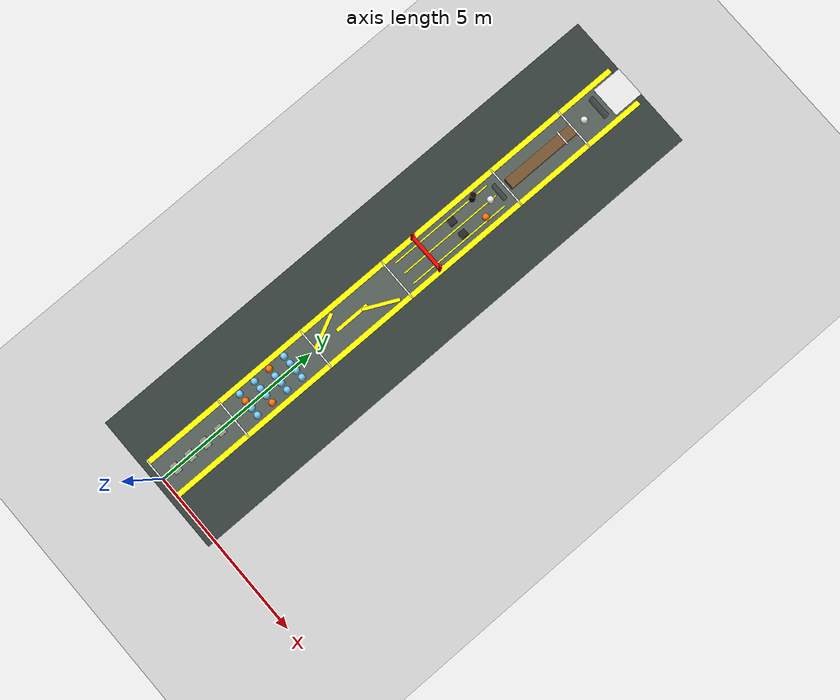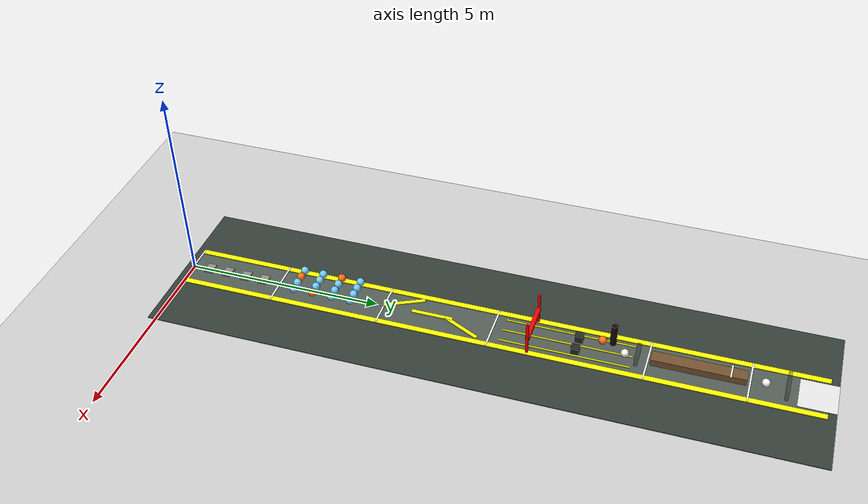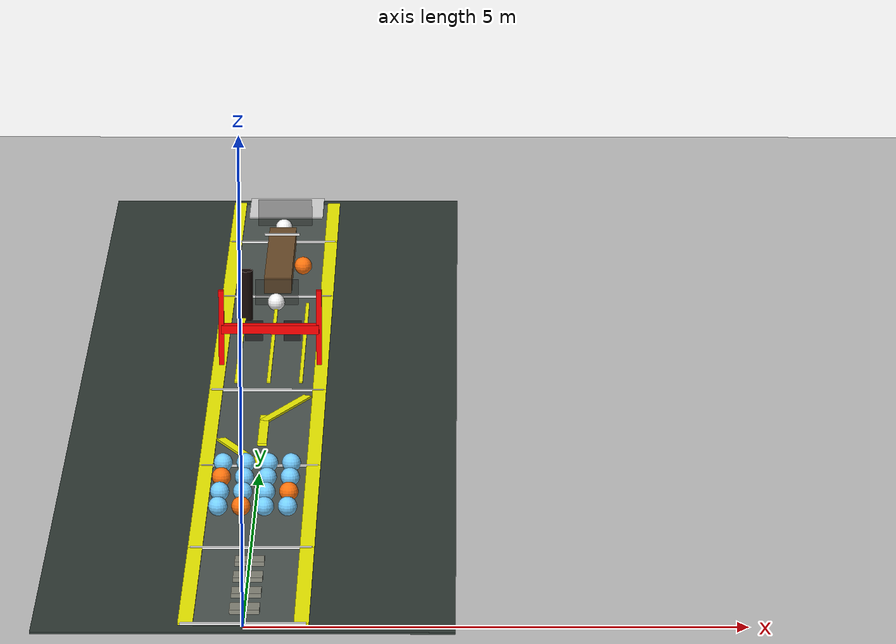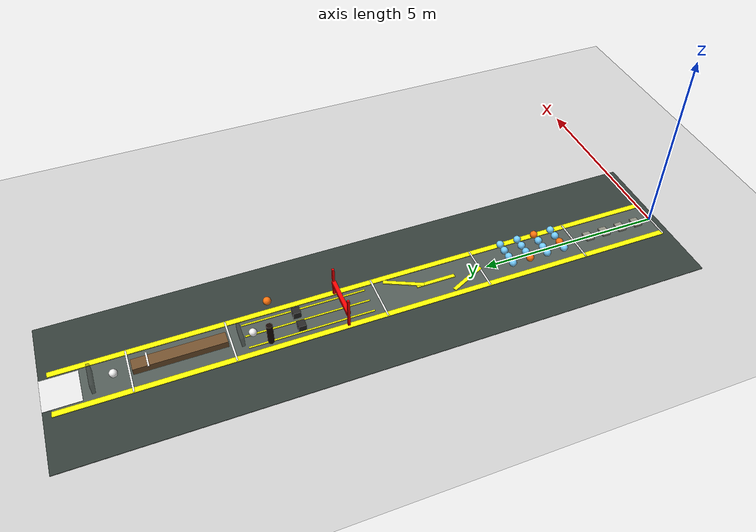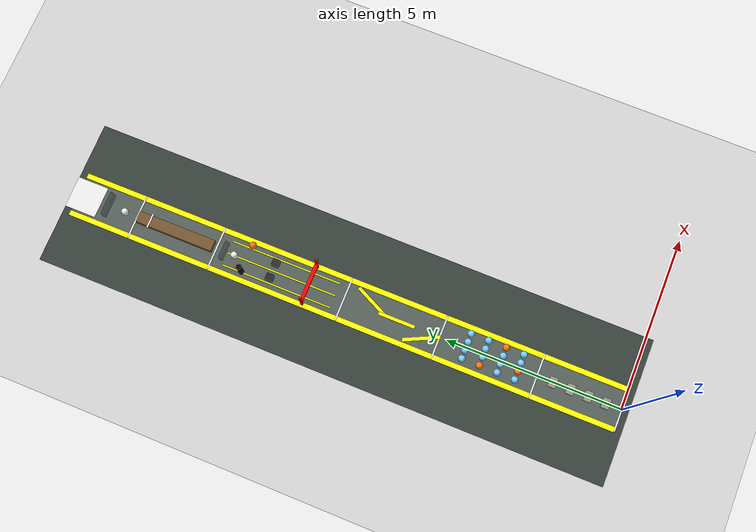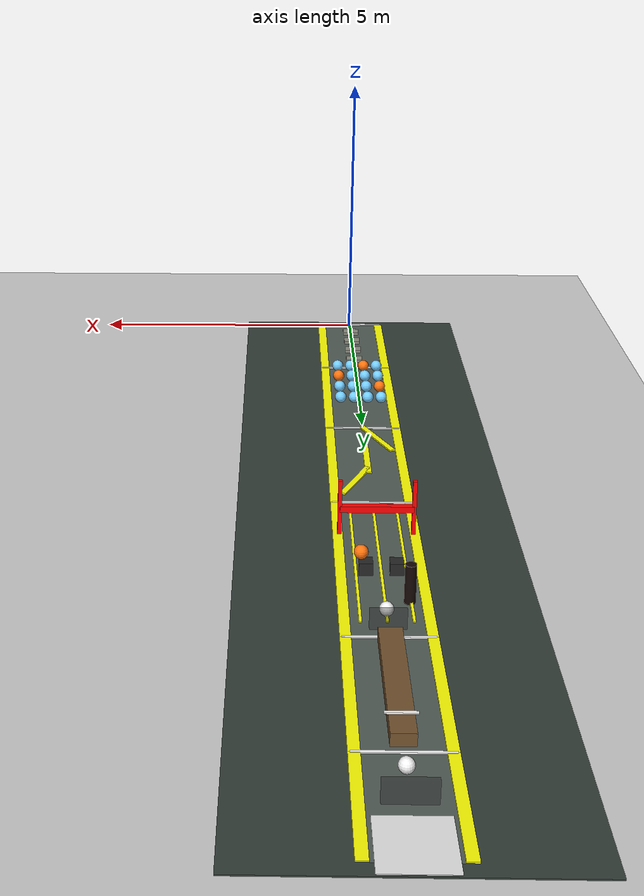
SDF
<?xml version='1.0'?>
<sdf version='1.6'>
  <world name='wild_treasure_2026'>
    <gravity>0 0 -9.8</gravity>
    <physics name='default_physics' type='ode'>
      <max_step_size>0.002</max_step_size>
      <real_time_update_rate>500</real_time_update_rate>
    </physics>
    <include><uri>model://sun</uri></include>
    <include><uri>model://ground_plane</uri></include>

    <model name='ground_2026'>
      <static>true</static>
      <pose>0 8 0 0 0 0</pose>
      <link name='ground_2026_link'>
      <collision name='ground_2026_collision'>
        <geometry><box><size>4.2 16.4 0.02</size></box></geometry>
      </collision>
        <visual name='ground_2026_visual'>
          <geometry><box><size>4.2 16.4 0.02</size></box></geometry>
          <material><ambient>0.20 0.24 0.22 1</ambient><diffuse>0.20 0.24 0.22 1</diffuse></material>
        </visual>
      </link>
    </model>
    <model name='seg1_lane'>
      <static>true</static>
      <pose>0 1.2 0.011 0 0 0</pose>
      <link name='seg1_lane_link'>
        <visual name='seg1_lane_visual'>
          <geometry><box><size>1.0 2.4 0.004</size></box></geometry>
          <material><ambient>0.32 0.36 0.34 1</ambient><diffuse>0.32 0.36 0.34 1</diffuse></material>
        </visual>
      </link>
    </model>
    <model name='seg1_left_yellow'>
      <static>true</static>
      <pose>-0.575 1.2 0.025 0 0 0</pose>
      <link name='seg1_left_yellow_link'>
        <visual name='seg1_left_yellow_visual'>
          <geometry><box><size>0.15 2.4 0.02</size></box></geometry>
          <material><ambient>1 1 0 1</ambient><diffuse>1 1 0 1</diffuse></material>
        </visual>
      </link>
    </model>
    <model name='seg1_right_yellow'>
      <static>true</static>
      <pose>0.575 1.2 0.025 0 0 0</pose>
      <link name='seg1_right_yellow_link'>
        <visual name='seg1_right_yellow_visual'>
          <geometry><box><size>0.15 2.4 0.02</size></box></geometry>
          <material><ambient>1 1 0 1</ambient><diffuse>1 1 0 1</diffuse></material>
        </visual>
      </link>
    </model>
    <model name='seg1_start_line'>
      <static>true</static>
      <pose>0 0.0 0.03 0 0 0</pose>
      <link name='seg1_start_line_link'>
        <visual name='seg1_start_line_visual'>
          <geometry><box><size>1.25 0.04 0.02</size></box></geometry>
          <material><ambient>1 1 1 1</ambient><diffuse>1 1 1 1</diffuse></material>
        </visual>
      </link>
    </model>
    <model name='seg2_lane'>
      <static>true</static>
      <pose>0 3.8 0.011 0 0 0</pose>
      <link name='seg2_lane_link'>
        <visual name='seg2_lane_visual'>
          <geometry><box><size>1.0 2.8000000000000003 0.004</size></box></geometry>
          <material><ambient>0.32 0.36 0.34 1</ambient><diffuse>0.32 0.36 0.34 1</diffuse></material>
        </visual>
      </link>
    </model>
    <model name='seg2_left_yellow'>
      <static>true</static>
      <pose>-0.575 3.8 0.025 0 0 0</pose>
      <link name='seg2_left_yellow_link'>
        <visual name='seg2_left_yellow_visual'>
          <geometry><box><size>0.15 2.8000000000000003 0.02</size></box></geometry>
          <material><ambient>1 1 0 1</ambient><diffuse>1 1 0 1</diffuse></material>
        </visual>
      </link>
    </model>
    <model name='seg2_right_yellow'>
      <static>true</static>
      <pose>0.575 3.8 0.025 0 0 0</pose>
      <link name='seg2_right_yellow_link'>
        <visual name='seg2_right_yellow_visual'>
          <geometry><box><size>0.15 2.8000000000000003 0.02</size></box></geometry>
          <material><ambient>1 1 0 1</ambient><diffuse>1 1 0 1</diffuse></material>
        </visual>
      </link>
    </model>
    <model name='seg2_start_line'>
      <static>true</static>
      <pose>0 2.4 0.03 0 0 0</pose>
      <link name='seg2_start_line_link'>
        <visual name='seg2_start_line_visual'>
          <geometry><box><size>1.25 0.04 0.02</size></box></geometry>
          <material><ambient>1 1 1 1</ambient><diffuse>1 1 1 1</diffuse></material>
        </visual>
      </link>
    </model>
    <model name='seg3_lane'>
      <static>true</static>
      <pose>0 6.6 0.011 0 0 0</pose>
      <link name='seg3_lane_link'>
        <visual name='seg3_lane_visual'>
          <geometry><box><size>1.0 2.8 0.004</size></box></geometry>
          <material><ambient>0.32 0.36 0.34 1</ambient><diffuse>0.32 0.36 0.34 1</diffuse></material>
        </visual>
      </link>
    </model>
    <model name='seg3_left_yellow'>
      <static>true</static>
      <pose>-0.575 6.6 0.025 0 0 0</pose>
      <link name='seg3_left_yellow_link'>
        <visual name='seg3_left_yellow_visual'>
          <geometry><box><size>0.15 2.8 0.02</size></box></geometry>
          <material><ambient>1 1 0 1</ambient><diffuse>1 1 0 1</diffuse></material>
        </visual>
      </link>
    </model>
    <model name='seg3_right_yellow'>
      <static>true</static>
      <pose>0.575 6.6 0.025 0 0 0</pose>
      <link name='seg3_right_yellow_link'>
        <visual name='seg3_right_yellow_visual'>
          <geometry><box><size>0.15 2.8 0.02</size></box></geometry>
          <material><ambient>1 1 0 1</ambient><diffuse>1 1 0 1</diffuse></material>
        </visual>
      </link>
    </model>
    <model name='seg3_start_line'>
      <static>true</static>
      <pose>0 5.2 0.03 0 0 0</pose>
      <link name='seg3_start_line_link'>
        <visual name='seg3_start_line_visual'>
          <geometry><box><size>1.25 0.04 0.02</size></box></geometry>
          <material><ambient>1 1 1 1</ambient><diffuse>1 1 1 1</diffuse></material>
        </visual>
      </link>
    </model>
    <model name='seg4_lane'>
      <static>true</static>
      <pose>0 9.9 0.011 0 0 0</pose>
      <link name='seg4_lane_link'>
        <visual name='seg4_lane_visual'>
          <geometry><box><size>1.0 3.8000000000000007 0.004</size></box></geometry>
          <material><ambient>0.32 0.36 0.34 1</ambient><diffuse>0.32 0.36 0.34 1</diffuse></material>
        </visual>
      </link>
    </model>
    <model name='seg4_left_yellow'>
      <static>true</static>
      <pose>-0.575 9.9 0.025 0 0 0</pose>
      <link name='seg4_left_yellow_link'>
        <visual name='seg4_left_yellow_visual'>
          <geometry><box><size>0.15 3.8000000000000007 0.02</size></box></geometry>
          <material><ambient>1 1 0 1</ambient><diffuse>1 1 0 1</diffuse></material>
        </visual>
      </link>
    </model>
    <model name='seg4_right_yellow'>
      <static>true</static>
      <pose>0.575 9.9 0.025 0 0 0</pose>
      <link name='seg4_right_yellow_link'>
        <visual name='seg4_right_yellow_visual'>
          <geometry><box><size>0.15 3.8000000000000007 0.02</size></box></geometry>
          <material><ambient>1 1 0 1</ambient><diffuse>1 1 0 1</diffuse></material>
        </visual>
      </link>
    </model>
    <model name='seg4_start_line'>
      <static>true</static>
      <pose>0 8.0 0.03 0 0 0</pose>
      <link name='seg4_start_line_link'>
        <visual name='seg4_start_line_visual'>
          <geometry><box><size>1.25 0.04 0.02</size></box></geometry>
          <material><ambient>1 1 1 1</ambient><diffuse>1 1 1 1</diffuse></material>
        </visual>
      </link>
    </model>
    <model name='seg5_lane'>
      <static>true</static>
      <pose>0 13.0 0.011 0 0 0</pose>
      <link name='seg5_lane_link'>
        <visual name='seg5_lane_visual'>
          <geometry><box><size>1.0 2.3999999999999986 0.004</size></box></geometry>
          <material><ambient>0.32 0.36 0.34 1</ambient><diffuse>0.32 0.36 0.34 1</diffuse></material>
        </visual>
      </link>
    </model>
    <model name='seg5_left_yellow'>
      <static>true</static>
      <pose>-0.575 13.0 0.025 0 0 0</pose>
      <link name='seg5_left_yellow_link'>
        <visual name='seg5_left_yellow_visual'>
          <geometry><box><size>0.15 2.3999999999999986 0.02</size></box></geometry>
          <material><ambient>1 1 0 1</ambient><diffuse>1 1 0 1</diffuse></material>
        </visual>
      </link>
    </model>
    <model name='seg5_right_yellow'>
      <static>true</static>
      <pose>0.575 13.0 0.025 0 0 0</pose>
      <link name='seg5_right_yellow_link'>
        <visual name='seg5_right_yellow_visual'>
          <geometry><box><size>0.15 2.3999999999999986 0.02</size></box></geometry>
          <material><ambient>1 1 0 1</ambient><diffuse>1 1 0 1</diffuse></material>
        </visual>
      </link>
    </model>
    <model name='seg5_start_line'>
      <static>true</static>
      <pose>0 11.8 0.03 0 0 0</pose>
      <link name='seg5_start_line_link'>
        <visual name='seg5_start_line_visual'>
          <geometry><box><size>1.25 0.04 0.02</size></box></geometry>
          <material><ambient>1 1 1 1</ambient><diffuse>1 1 1 1</diffuse></material>
        </visual>
      </link>
    </model>
    <model name='seg6_lane'>
      <static>true</static>
      <pose>0 15.1 0.011 0 0 0</pose>
      <link name='seg6_lane_link'>
        <visual name='seg6_lane_visual'>
          <geometry><box><size>1.0 1.8000000000000007 0.004</size></box></geometry>
          <material><ambient>0.32 0.36 0.34 1</ambient><diffuse>0.32 0.36 0.34 1</diffuse></material>
        </visual>
      </link>
    </model>
    <model name='seg6_left_yellow'>
      <static>true</static>
      <pose>-0.575 15.1 0.025 0 0 0</pose>
      <link name='seg6_left_yellow_link'>
        <visual name='seg6_left_yellow_visual'>
          <geometry><box><size>0.15 1.8000000000000007 0.02</size></box></geometry>
          <material><ambient>1 1 0 1</ambient><diffuse>1 1 0 1</diffuse></material>
        </visual>
      </link>
    </model>
    <model name='seg6_right_yellow'>
      <static>true</static>
      <pose>0.575 15.1 0.025 0 0 0</pose>
      <link name='seg6_right_yellow_link'>
        <visual name='seg6_right_yellow_visual'>
          <geometry><box><size>0.15 1.8000000000000007 0.02</size></box></geometry>
          <material><ambient>1 1 0 1</ambient><diffuse>1 1 0 1</diffuse></material>
        </visual>
      </link>
    </model>
    <model name='seg6_start_line'>
      <static>true</static>
      <pose>0 14.2 0.03 0 0 0</pose>
      <link name='seg6_start_line_link'>
        <visual name='seg6_start_line_visual'>
          <geometry><box><size>1.25 0.04 0.02</size></box></geometry>
          <material><ambient>1 1 1 1</ambient><diffuse>1 1 1 1</diffuse></material>
        </visual>
      </link>
    </model>
    <model name='finish_circle_marker'>
      <static>true</static>
      <pose>0 15.75 0.035 0 0 0</pose>
      <link name='finish_circle_marker_link'>
        <visual name='finish_circle_marker_visual'>
          <geometry><box><size>0.9 0.9 0.012</size></box></geometry>
          <material><ambient>0.9 0.9 0.9 1</ambient><diffuse>0.9 0.9 0.9 1</diffuse></material>
        </visual>
      </link>
    </model>
    <model name='flagstone_00'>
      <static>true</static>
      <pose>0 0.45 0.035 0 0 0</pose>
      <link name='flagstone_00_link'>
      <collision name='flagstone_00_collision'>
        <geometry><box><size>0.30 0.22 0.05</size></box></geometry>
      </collision>
        <visual name='flagstone_00_visual'>
          <geometry><box><size>0.30 0.22 0.05</size></box></geometry>
          <material><ambient>0.55 0.55 0.50 1</ambient><diffuse>0.55 0.55 0.50 1</diffuse></material>
        </visual>
      </link>
    </model>
    <model name='flagstone_01'>
      <static>true</static>
      <pose>0 0.95 0.035 0 0 0</pose>
      <link name='flagstone_01_link'>
      <collision name='flagstone_01_collision'>
        <geometry><box><size>0.30 0.22 0.05</size></box></geometry>
      </collision>
        <visual name='flagstone_01_visual'>
          <geometry><box><size>0.30 0.22 0.05</size></box></geometry>
          <material><ambient>0.55 0.55 0.50 1</ambient><diffuse>0.55 0.55 0.50 1</diffuse></material>
        </visual>
      </link>
    </model>
    <model name='flagstone_02'>
      <static>true</static>
      <pose>0 1.45 0.035 0 0 0</pose>
      <link name='flagstone_02_link'>
      <collision name='flagstone_02_collision'>
        <geometry><box><size>0.30 0.22 0.05</size></box></geometry>
      </collision>
        <visual name='flagstone_02_visual'>
          <geometry><box><size>0.30 0.22 0.05</size></box></geometry>
          <material><ambient>0.55 0.55 0.50 1</ambient><diffuse>0.55 0.55 0.50 1</diffuse></material>
        </visual>
      </link>
    </model>
    <model name='flagstone_03'>
      <static>true</static>
      <pose>0 1.95 0.035 0 0 0</pose>
      <link name='flagstone_03_link'>
      <collision name='flagstone_03_collision'>
        <geometry><box><size>0.30 0.22 0.05</size></box></geometry>
      </collision>
        <visual name='flagstone_03_visual'>
          <geometry><box><size>0.30 0.22 0.05</size></box></geometry>
          <material><ambient>0.55 0.55 0.50 1</ambient><diffuse>0.55 0.55 0.50 1</diffuse></material>
        </visual>
      </link>
    </model>
    <model name='seg2_blue_ball_r1c1'>
      <static>false</static>
      <pose>-0.36 2.95 0.30 0 0 0</pose>
      <link name='seg2_blue_ball_r1c1_link'>
        <inertial>
          <mass>0.06</mass>
          <inertia><ixx>0.00024000000000000003</ixx><iyy>0.00024000000000000003</iyy><izz>0.00024000000000000003</izz><ixy>0</ixy><ixz>0</ixz><iyz>0</iyz></inertia>
        </inertial>
        <collision name='seg2_blue_ball_r1c1_collision'>
          <geometry><sphere><radius>0.1</radius></sphere></geometry>
          <surface><friction><ode><mu>0.4</mu><mu2>0.4</mu2></ode></friction></surface>
        </collision>
        <visual name='seg2_blue_ball_r1c1_visual'>
          <geometry><sphere><radius>0.1</radius></sphere></geometry>
          <material><ambient>0.45 0.80 1.0 1</ambient><diffuse>0.45 0.80 1.0 1</diffuse></material>
        </visual>
      </link>
    </model>
    <model name='seg2_orange_ball_r1c2'>
      <static>false</static>
      <pose>-0.12 2.95 0.30 0 0 0</pose>
      <link name='seg2_orange_ball_r1c2_link'>
        <inertial>
          <mass>0.06</mass>
          <inertia><ixx>0.00024000000000000003</ixx><iyy>0.00024000000000000003</iyy><izz>0.00024000000000000003</izz><ixy>0</ixy><ixz>0</ixz><iyz>0</iyz></inertia>
        </inertial>
        <collision name='seg2_orange_ball_r1c2_collision'>
          <geometry><sphere><radius>0.1</radius></sphere></geometry>
          <surface><friction><ode><mu>0.4</mu><mu2>0.4</mu2></ode></friction></surface>
        </collision>
        <visual name='seg2_orange_ball_r1c2_visual'>
          <geometry><sphere><radius>0.1</radius></sphere></geometry>
          <material><ambient>1 0.45 0.05 1</ambient><diffuse>1 0.45 0.05 1</diffuse></material>
        </visual>
      </link>
    </model>
    <model name='seg2_blue_ball_r1c3'>
      <static>false</static>
      <pose>0.12 2.95 0.30 0 0 0</pose>
      <link name='seg2_blue_ball_r1c3_link'>
        <inertial>
          <mass>0.06</mass>
          <inertia><ixx>0.00024000000000000003</ixx><iyy>0.00024000000000000003</iyy><izz>0.00024000000000000003</izz><ixy>0</ixy><ixz>0</ixz><iyz>0</iyz></inertia>
        </inertial>
        <collision name='seg2_blue_ball_r1c3_collision'>
          <geometry><sphere><radius>0.1</radius></sphere></geometry>
          <surface><friction><ode><mu>0.4</mu><mu2>0.4</mu2></ode></friction></surface>
        </collision>
        <visual name='seg2_blue_ball_r1c3_visual'>
          <geometry><sphere><radius>0.1</radius></sphere></geometry>
          <material><ambient>0.45 0.80 1.0 1</ambient><diffuse>0.45 0.80 1.0 1</diffuse></material>
        </visual>
      </link>
    </model>
    <model name='seg2_blue_ball_r1c4'>
      <static>false</static>
      <pose>0.36 2.95 0.30 0 0 0</pose>
      <link name='seg2_blue_ball_r1c4_link'>
        <inertial>
          <mass>0.06</mass>
          <inertia><ixx>0.00024000000000000003</ixx><iyy>0.00024000000000000003</iyy><izz>0.00024000000000000003</izz><ixy>0</ixy><ixz>0</ixz><iyz>0</iyz></inertia>
        </inertial>
        <collision name='seg2_blue_ball_r1c4_collision'>
          <geometry><sphere><radius>0.1</radius></sphere></geometry>
          <surface><friction><ode><mu>0.4</mu><mu2>0.4</mu2></ode></friction></surface>
        </collision>
        <visual name='seg2_blue_ball_r1c4_visual'>
          <geometry><sphere><radius>0.1</radius></sphere></geometry>
          <material><ambient>0.45 0.80 1.0 1</ambient><diffuse>0.45 0.80 1.0 1</diffuse></material>
        </visual>
      </link>
    </model>
    <model name='seg2_blue_ball_r2c1'>
      <static>false</static>
      <pose>-0.36 3.45 0.30 0 0 0</pose>
      <link name='seg2_blue_ball_r2c1_link'>
        <inertial>
          <mass>0.06</mass>
          <inertia><ixx>0.00024000000000000003</ixx><iyy>0.00024000000000000003</iyy><izz>0.00024000000000000003</izz><ixy>0</ixy><ixz>0</ixz><iyz>0</iyz></inertia>
        </inertial>
        <collision name='seg2_blue_ball_r2c1_collision'>
          <geometry><sphere><radius>0.1</radius></sphere></geometry>
          <surface><friction><ode><mu>0.4</mu><mu2>0.4</mu2></ode></friction></surface>
        </collision>
        <visual name='seg2_blue_ball_r2c1_visual'>
          <geometry><sphere><radius>0.1</radius></sphere></geometry>
          <material><ambient>0.45 0.80 1.0 1</ambient><diffuse>0.45 0.80 1.0 1</diffuse></material>
        </visual>
      </link>
    </model>
    <model name='seg2_blue_ball_r2c2'>
      <static>false</static>
      <pose>-0.12 3.45 0.30 0 0 0</pose>
      <link name='seg2_blue_ball_r2c2_link'>
        <inertial>
          <mass>0.06</mass>
          <inertia><ixx>0.00024000000000000003</ixx><iyy>0.00024000000000000003</iyy><izz>0.00024000000000000003</izz><ixy>0</ixy><ixz>0</ixz><iyz>0</iyz></inertia>
        </inertial>
        <collision name='seg2_blue_ball_r2c2_collision'>
          <geometry><sphere><radius>0.1</radius></sphere></geometry>
          <surface><friction><ode><mu>0.4</mu><mu2>0.4</mu2></ode></friction></surface>
        </collision>
        <visual name='seg2_blue_ball_r2c2_visual'>
          <geometry><sphere><radius>0.1</radius></sphere></geometry>
          <material><ambient>0.45 0.80 1.0 1</ambient><diffuse>0.45 0.80 1.0 1</diffuse></material>
        </visual>
      </link>
    </model>
    <model name='seg2_blue_ball_r2c3'>
      <static>false</static>
      <pose>0.12 3.45 0.30 0 0 0</pose>
      <link name='seg2_blue_ball_r2c3_link'>
        <inertial>
          <mass>0.06</mass>
          <inertia><ixx>0.00024000000000000003</ixx><iyy>0.00024000000000000003</iyy><izz>0.00024000000000000003</izz><ixy>0</ixy><ixz>0</ixz><iyz>0</iyz></inertia>
        </inertial>
        <collision name='seg2_blue_ball_r2c3_collision'>
          <geometry><sphere><radius>0.1</radius></sphere></geometry>
          <surface><friction><ode><mu>0.4</mu><mu2>0.4</mu2></ode></friction></surface>
        </collision>
        <visual name='seg2_blue_ball_r2c3_visual'>
          <geometry><sphere><radius>0.1</radius></sphere></geometry>
          <material><ambient>0.45 0.80 1.0 1</ambient><diffuse>0.45 0.80 1.0 1</diffuse></material>
        </visual>
      </link>
    </model>
    <model name='seg2_orange_ball_r2c4'>
      <static>false</static>
      <pose>0.36 3.45 0.30 0 0 0</pose>
      <link name='seg2_orange_ball_r2c4_link'>
        <inertial>
          <mass>0.06</mass>
          <inertia><ixx>0.00024000000000000003</ixx><iyy>0.00024000000000000003</iyy><izz>0.00024000000000000003</izz><ixy>0</ixy><ixz>0</ixz><iyz>0</iyz></inertia>
        </inertial>
        <collision name='seg2_orange_ball_r2c4_collision'>
          <geometry><sphere><radius>0.1</radius></sphere></geometry>
          <surface><friction><ode><mu>0.4</mu><mu2>0.4</mu2></ode></friction></surface>
        </collision>
        <visual name='seg2_orange_ball_r2c4_visual'>
          <geometry><sphere><radius>0.1</radius></sphere></geometry>
          <material><ambient>1 0.45 0.05 1</ambient><diffuse>1 0.45 0.05 1</diffuse></material>
        </visual>
      </link>
    </model>
    <model name='seg2_orange_ball_r3c1'>
      <static>false</static>
      <pose>-0.36 3.95 0.30 0 0 0</pose>
      <link name='seg2_orange_ball_r3c1_link'>
        <inertial>
          <mass>0.06</mass>
          <inertia><ixx>0.00024000000000000003</ixx><iyy>0.00024000000000000003</iyy><izz>0.00024000000000000003</izz><ixy>0</ixy><ixz>0</ixz><iyz>0</iyz></inertia>
        </inertial>
        <collision name='seg2_orange_ball_r3c1_collision'>
          <geometry><sphere><radius>0.1</radius></sphere></geometry>
          <surface><friction><ode><mu>0.4</mu><mu2>0.4</mu2></ode></friction></surface>
        </collision>
        <visual name='seg2_orange_ball_r3c1_visual'>
          <geometry><sphere><radius>0.1</radius></sphere></geometry>
          <material><ambient>1 0.45 0.05 1</ambient><diffuse>1 0.45 0.05 1</diffuse></material>
        </visual>
      </link>
    </model>
    <model name='seg2_blue_ball_r3c2'>
      <static>false</static>
      <pose>-0.12 3.95 0.30 0 0 0</pose>
      <link name='seg2_blue_ball_r3c2_link'>
        <inertial>
          <mass>0.06</mass>
          <inertia><ixx>0.00024000000000000003</ixx><iyy>0.00024000000000000003</iyy><izz>0.00024000000000000003</izz><ixy>0</ixy><ixz>0</ixz><iyz>0</iyz></inertia>
        </inertial>
        <collision name='seg2_blue_ball_r3c2_collision'>
          <geometry><sphere><radius>0.1</radius></sphere></geometry>
          <surface><friction><ode><mu>0.4</mu><mu2>0.4</mu2></ode></friction></surface>
        </collision>
        <visual name='seg2_blue_ball_r3c2_visual'>
          <geometry><sphere><radius>0.1</radius></sphere></geometry>
          <material><ambient>0.45 0.80 1.0 1</ambient><diffuse>0.45 0.80 1.0 1</diffuse></material>
        </visual>
      </link>
    </model>
    <model name='seg2_blue_ball_r3c3'>
      <static>false</static>
      <pose>0.12 3.95 0.30 0 0 0</pose>
      <link name='seg2_blue_ball_r3c3_link'>
        <inertial>
          <mass>0.06</mass>
          <inertia><ixx>0.00024000000000000003</ixx><iyy>0.00024000000000000003</iyy><izz>0.00024000000000000003</izz><ixy>0</ixy><ixz>0</ixz><iyz>0</iyz></inertia>
        </inertial>
        <collision name='seg2_blue_ball_r3c3_collision'>
          <geometry><sphere><radius>0.1</radius></sphere></geometry>
          <surface><friction><ode><mu>0.4</mu><mu2>0.4</mu2></ode></friction></surface>
        </collision>
        <visual name='seg2_blue_ball_r3c3_visual'>
          <geometry><sphere><radius>0.1</radius></sphere></geometry>
          <material><ambient>0.45 0.80 1.0 1</ambient><diffuse>0.45 0.80 1.0 1</diffuse></material>
        </visual>
      </link>
    </model>
    <model name='seg2_blue_ball_r3c4'>
      <static>false</static>
      <pose>0.36 3.95 0.30 0 0 0</pose>
      <link name='seg2_blue_ball_r3c4_link'>
        <inertial>
          <mass>0.06</mass>
          <inertia><ixx>0.00024000000000000003</ixx><iyy>0.00024000000000000003</iyy><izz>0.00024000000000000003</izz><ixy>0</ixy><ixz>0</ixz><iyz>0</iyz></inertia>
        </inertial>
        <collision name='seg2_blue_ball_r3c4_collision'>
          <geometry><sphere><radius>0.1</radius></sphere></geometry>
          <surface><friction><ode><mu>0.4</mu><mu2>0.4</mu2></ode></friction></surface>
        </collision>
        <visual name='seg2_blue_ball_r3c4_visual'>
          <geometry><sphere><radius>0.1</radius></sphere></geometry>
          <material><ambient>0.45 0.80 1.0 1</ambient><diffuse>0.45 0.80 1.0 1</diffuse></material>
        </visual>
      </link>
    </model>
    <model name='seg2_blue_ball_r4c1'>
      <static>false</static>
      <pose>-0.36 4.45 0.30 0 0 0</pose>
      <link name='seg2_blue_ball_r4c1_link'>
        <inertial>
          <mass>0.06</mass>
          <inertia><ixx>0.00024000000000000003</ixx><iyy>0.00024000000000000003</iyy><izz>0.00024000000000000003</izz><ixy>0</ixy><ixz>0</ixz><iyz>0</iyz></inertia>
        </inertial>
        <collision name='seg2_blue_ball_r4c1_collision'>
          <geometry><sphere><radius>0.1</radius></sphere></geometry>
          <surface><friction><ode><mu>0.4</mu><mu2>0.4</mu2></ode></friction></surface>
        </collision>
        <visual name='seg2_blue_ball_r4c1_visual'>
          <geometry><sphere><radius>0.1</radius></sphere></geometry>
          <material><ambient>0.45 0.80 1.0 1</ambient><diffuse>0.45 0.80 1.0 1</diffuse></material>
        </visual>
      </link>
    </model>
    <model name='seg2_blue_ball_r4c2'>
      <static>false</static>
      <pose>-0.12 4.45 0.30 0 0 0</pose>
      <link name='seg2_blue_ball_r4c2_link'>
        <inertial>
          <mass>0.06</mass>
          <inertia><ixx>0.00024000000000000003</ixx><iyy>0.00024000000000000003</iyy><izz>0.00024000000000000003</izz><ixy>0</ixy><ixz>0</ixz><iyz>0</iyz></inertia>
        </inertial>
        <collision name='seg2_blue_ball_r4c2_collision'>
          <geometry><sphere><radius>0.1</radius></sphere></geometry>
          <surface><friction><ode><mu>0.4</mu><mu2>0.4</mu2></ode></friction></surface>
        </collision>
        <visual name='seg2_blue_ball_r4c2_visual'>
          <geometry><sphere><radius>0.1</radius></sphere></geometry>
          <material><ambient>0.45 0.80 1.0 1</ambient><diffuse>0.45 0.80 1.0 1</diffuse></material>
        </visual>
      </link>
    </model>
    <model name='seg2_blue_ball_r4c3'>
      <static>false</static>
      <pose>0.12 4.45 0.30 0 0 0</pose>
      <link name='seg2_blue_ball_r4c3_link'>
        <inertial>
          <mass>0.06</mass>
          <inertia><ixx>0.00024000000000000003</ixx><iyy>0.00024000000000000003</iyy><izz>0.00024000000000000003</izz><ixy>0</ixy><ixz>0</ixz><iyz>0</iyz></inertia>
        </inertial>
        <collision name='seg2_blue_ball_r4c3_collision'>
          <geometry><sphere><radius>0.1</radius></sphere></geometry>
          <surface><friction><ode><mu>0.4</mu><mu2>0.4</mu2></ode></friction></surface>
        </collision>
        <visual name='seg2_blue_ball_r4c3_visual'>
          <geometry><sphere><radius>0.1</radius></sphere></geometry>
          <material><ambient>0.45 0.80 1.0 1</ambient><diffuse>0.45 0.80 1.0 1</diffuse></material>
        </visual>
      </link>
    </model>
    <model name='seg2_blue_ball_r4c4'>
      <static>false</static>
      <pose>0.36 4.45 0.30 0 0 0</pose>
      <link name='seg2_blue_ball_r4c4_link'>
        <inertial>
          <mass>0.06</mass>
          <inertia><ixx>0.00024000000000000003</ixx><iyy>0.00024000000000000003</iyy><izz>0.00024000000000000003</izz><ixy>0</ixy><ixz>0</ixz><iyz>0</iyz></inertia>
        </inertial>
        <collision name='seg2_blue_ball_r4c4_collision'>
          <geometry><sphere><radius>0.1</radius></sphere></geometry>
          <surface><friction><ode><mu>0.4</mu><mu2>0.4</mu2></ode></friction></surface>
        </collision>
        <visual name='seg2_blue_ball_r4c4_visual'>
          <geometry><sphere><radius>0.1</radius></sphere></geometry>
          <material><ambient>0.45 0.80 1.0 1</ambient><diffuse>0.45 0.80 1.0 1</diffuse></material>
        </visual>
      </link>
    </model>
    <model name='curve_inner_yellow_0'>
      <static>true</static>
      <pose>-0.22 5.65 0.04 0 0 0.45</pose>
      <link name='curve_inner_yellow_0_link'>
        <visual name='curve_inner_yellow_0_visual'>
          <geometry><box><size>0.10 1.05 0.025</size></box></geometry>
          <material><ambient>1 1 0 1</ambient><diffuse>1 1 0 1</diffuse></material>
        </visual>
      </link>
    </model>
    <model name='curve_inner_yellow_1'>
      <static>true</static>
      <pose>0.0 6.45 0.04 0 0 0.0</pose>
      <link name='curve_inner_yellow_1_link'>
        <visual name='curve_inner_yellow_1_visual'>
          <geometry><box><size>0.10 1.05 0.025</size></box></geometry>
          <material><ambient>1 1 0 1</ambient><diffuse>1 1 0 1</diffuse></material>
        </visual>
      </link>
    </model>
    <model name='curve_inner_yellow_2'>
      <static>true</static>
      <pose>0.22 7.25 0.04 0 0 -0.45</pose>
      <link name='curve_inner_yellow_2_link'>
        <visual name='curve_inner_yellow_2_visual'>
          <geometry><box><size>0.10 1.05 0.025</size></box></geometry>
          <material><ambient>1 1 0 1</ambient><diffuse>1 1 0 1</diffuse></material>
        </visual>
      </link>
    </model>
    <model name='tunnel_lane_14'>
      <static>true</static>
      <pose>-0.36 9.85 0.04 0 0 0</pose>
      <link name='tunnel_lane_14_link'>
        <visual name='tunnel_lane_14_visual'>
          <geometry><box><size>0.04 3.2 0.02</size></box></geometry>
          <material><ambient>1 1 0 1</ambient><diffuse>1 1 0 1</diffuse></material>
        </visual>
      </link>
    </model>
    <model name='tunnel_lane_50'>
      <static>true</static>
      <pose>0.0 9.85 0.04 0 0 0</pose>
      <link name='tunnel_lane_50_link'>
        <visual name='tunnel_lane_50_visual'>
          <geometry><box><size>0.04 3.2 0.02</size></box></geometry>
          <material><ambient>1 1 0 1</ambient><diffuse>1 1 0 1</diffuse></material>
        </visual>
      </link>
    </model>
    <model name='tunnel_lane_86'>
      <static>true</static>
      <pose>0.36 9.85 0.04 0 0 0</pose>
      <link name='tunnel_lane_86_link'>
        <visual name='tunnel_lane_86_visual'>
          <geometry><box><size>0.04 3.2 0.02</size></box></geometry>
          <material><ambient>1 1 0 1</ambient><diffuse>1 1 0 1</diffuse></material>
        </visual>
      </link>
    </model>
    <model name='height_bar_left_post'>
      <static>true</static>
      <pose>-0.55 9.00 0.45 0 0 0</pose>
      <link name='height_bar_left_post_link'>
      <collision name='height_bar_left_post_collision'>
        <geometry><box><size>0.06 0.06 0.90</size></box></geometry>
      </collision>
        <visual name='height_bar_left_post_visual'>
          <geometry><box><size>0.06 0.06 0.90</size></box></geometry>
          <material><ambient>1 0 0 1</ambient><diffuse>1 0 0 1</diffuse></material>
        </visual>
      </link>
    </model>
    <model name='height_bar_right_post'>
      <static>true</static>
      <pose>0.55 9.00 0.45 0 0 0</pose>
      <link name='height_bar_right_post_link'>
      <collision name='height_bar_right_post_collision'>
        <geometry><box><size>0.06 0.06 0.90</size></box></geometry>
      </collision>
        <visual name='height_bar_right_post_visual'>
          <geometry><box><size>0.06 0.06 0.90</size></box></geometry>
          <material><ambient>1 0 0 1</ambient><diffuse>1 0 0 1</diffuse></material>
        </visual>
      </link>
    </model>
    <model name='height_limit_bar'>
      <static>true</static>
      <pose>0 9.00 0.45 0 0 0</pose>
      <link name='height_limit_bar_link'>
      <collision name='height_limit_bar_collision'>
        <geometry><box><size>1.10 0.10 0.10</size></box></geometry>
      </collision>
        <visual name='height_limit_bar_visual'>
          <geometry><box><size>1.10 0.10 0.10</size></box></geometry>
          <material><ambient>1 0 0 1</ambient><diffuse>1 0 0 1</diffuse></material>
        </visual>
      </link>
    </model>
    <model name='block_obstacle_a'>
      <static>true</static>
      <pose>-0.22 10.10 0.10 0 0 0</pose>
      <link name='block_obstacle_a_link'>
      <collision name='block_obstacle_a_collision'>
        <geometry><box><size>0.20 0.20 0.20</size></box></geometry>
      </collision>
        <visual name='block_obstacle_a_visual'>
          <geometry><box><size>0.20 0.20 0.20</size></box></geometry>
          <material><ambient>0.15 0.15 0.15 1</ambient><diffuse>0.15 0.15 0.15 1</diffuse></material>
        </visual>
      </link>
    </model>
    <model name='block_obstacle_b'>
      <static>true</static>
      <pose>0.22 10.10 0.10 0 0 0</pose>
      <link name='block_obstacle_b_link'>
      <collision name='block_obstacle_b_collision'>
        <geometry><box><size>0.20 0.20 0.20</size></box></geometry>
      </collision>
        <visual name='block_obstacle_b_visual'>
          <geometry><box><size>0.20 0.20 0.20</size></box></geometry>
          <material><ambient>0.15 0.15 0.15 1</ambient><diffuse>0.15 0.15 0.15 1</diffuse></material>
        </visual>
      </link>
    </model>
    <model name='coke_bottle'>
      <static>false</static>
      <pose>-0.34 10.90 0.30 0 0 0</pose>
      <link name='coke_bottle_link'>
        <inertial><mass>0.6</mass></inertial>
        <collision name='coke_bottle_collision'><geometry><cylinder><radius>0.08</radius><length>0.6</length></cylinder></geometry></collision>
        <visual name='coke_bottle_visual'>
          <geometry><cylinder><radius>0.08</radius><length>0.6</length></cylinder></geometry>
          <material><ambient>0.08 0.03 0.02 1</ambient><diffuse>0.08 0.03 0.02 1</diffuse></material>
        </visual>
      </link>
    </model>
    <model name='seg4_orange_ball'>
      <static>false</static>
      <pose>0.33 10.75 0.70 0 0 0</pose>
      <link name='seg4_orange_ball_link'>
        <inertial>
          <mass>0.06</mass>
          <inertia><ixx>0.00024000000000000003</ixx><iyy>0.00024000000000000003</iyy><izz>0.00024000000000000003</izz><ixy>0</ixy><ixz>0</ixz><iyz>0</iyz></inertia>
        </inertial>
        <collision name='seg4_orange_ball_collision'>
          <geometry><sphere><radius>0.1</radius></sphere></geometry>
          <surface><friction><ode><mu>0.4</mu><mu2>0.4</mu2></ode></friction></surface>
        </collision>
        <visual name='seg4_orange_ball_visual'>
          <geometry><sphere><radius>0.1</radius></sphere></geometry>
          <material><ambient>1 0.45 0.05 1</ambient><diffuse>1 0.45 0.05 1</diffuse></material>
        </visual>
      </link>
    </model>
    <model name='seg4_soccer'>
      <static>false</static>
      <pose>0.0 11.25 0.12 0 0 0</pose>
      <link name='seg4_soccer_link'>
        <inertial>
          <mass>0.12</mass>
          <inertia><ixx>0.00048000000000000007</ixx><iyy>0.00048000000000000007</iyy><izz>0.00048000000000000007</izz><ixy>0</ixy><ixz>0</ixz><iyz>0</iyz></inertia>
        </inertial>
        <collision name='seg4_soccer_collision'>
          <geometry><sphere><radius>0.1</radius></sphere></geometry>
          <surface><friction><ode><mu>0.4</mu><mu2>0.4</mu2></ode></friction></surface>
        </collision>
        <visual name='seg4_soccer_visual'>
          <geometry><sphere><radius>0.1</radius></sphere></geometry>
          <material><ambient>0.95 0.95 0.95 1</ambient><diffuse>0.95 0.95 0.95 1</diffuse></material>
        </visual>
      </link>
    </model>
    <model name='seg4_goal'>
      <static>true</static>
      <pose>0.0 11.55 0.15 0 0 0</pose>
      <link name='seg4_goal_link'>
        <visual name='seg4_goal_visual'>
          <geometry><box><size>0.50 0.08 0.30</size></box></geometry>
          <material><ambient>0.1 0.1 0.1 0.35</ambient><diffuse>0.1 0.1 0.1 0.35</diffuse></material>
        </visual>
      </link>
    </model>
    <model name='narrow_bridge'>
      <static>true</static>
      <pose>0 13.0 0.14 0 0 0</pose>
      <link name='narrow_bridge_link'>
      <collision name='narrow_bridge_collision'>
        <geometry><box><size>0.32 2.25 0.18</size></box></geometry>
      </collision>
        <visual name='narrow_bridge_visual'>
          <geometry><box><size>0.32 2.25 0.18</size></box></geometry>
          <material><ambient>0.45 0.32 0.18 1</ambient><diffuse>0.45 0.32 0.18 1</diffuse></material>
        </visual>
      </link>
    </model>
    <model name='bridge_jump_line'>
      <static>true</static>
      <pose>0 13.75 0.25 0 0 0</pose>
      <link name='bridge_jump_line_link'>
        <visual name='bridge_jump_line_visual'>
          <geometry><box><size>0.42 0.04 0.02</size></box></geometry>
          <material><ambient>1 1 1 1</ambient><diffuse>1 1 1 1</diffuse></material>
        </visual>
      </link>
    </model>
    <model name='final_soccer'>
      <static>false</static>
      <pose>0 14.55 0.12 0 0 0</pose>
      <link name='final_soccer_link'>
        <inertial>
          <mass>0.12</mass>
          <inertia><ixx>0.00048000000000000007</ixx><iyy>0.00048000000000000007</iyy><izz>0.00048000000000000007</izz><ixy>0</ixy><ixz>0</ixz><iyz>0</iyz></inertia>
        </inertial>
        <collision name='final_soccer_collision'>
          <geometry><sphere><radius>0.1</radius></sphere></geometry>
          <surface><friction><ode><mu>0.4</mu><mu2>0.4</mu2></ode></friction></surface>
        </collision>
        <visual name='final_soccer_visual'>
          <geometry><sphere><radius>0.1</radius></sphere></geometry>
          <material><ambient>0.95 0.95 0.95 1</ambient><diffuse>0.95 0.95 0.95 1</diffuse></material>
        </visual>
      </link>
    </model>
    <model name='final_goal_exit'>
      <static>true</static>
      <pose>0 15.05 0.16 0 0 0</pose>
      <link name='final_goal_exit_link'>
        <visual name='final_goal_exit_visual'>
          <geometry><box><size>0.65 0.08 0.32</size></box></geometry>
          <material><ambient>0.1 0.1 0.1 0.35</ambient><diffuse>0.1 0.1 0.1 0.35</diffuse></material>
        </visual>
      </link>
    </model>
  </world>
</sdf>
